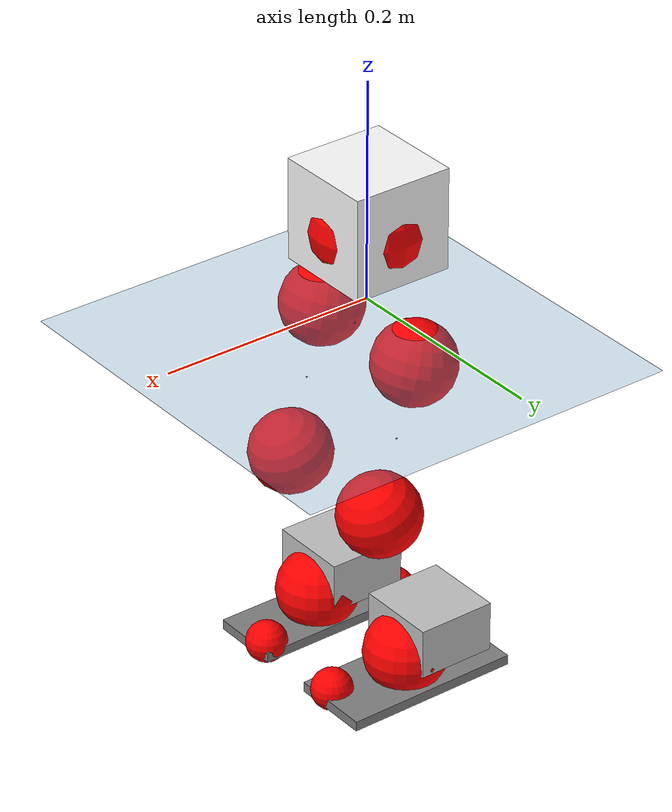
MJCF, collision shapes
<mujoco model="pi_12dof_release_v1">
  <compiler angle="radian" assetdir="assets" balanceinertia="true" inertiafromgeom="false"/>

  <option timestep="0.005" density="1.2" viscosity="2e-05"/>

  <size nkey="1"/>

  <visual>
    <quality shadowsize="8192"/>
    <map shadowclip="0.5"/>
  </visual>

  <default>
    <default class="/">
      <joint armature="0.01" damping="0.01" frictionloss="0.01"/>
      <geom contype="0" conaffinity="0" group="1" solref="-1000 -80"/>
      <site size="0.01 0.005 0.005" group="5"/>
      <general forcelimited="true" biastype="affine" gainprm="20" biasprm="0 -20 -0.5"/>
      <default class="foot">
        <geom size="0.0845 0.036 0.005" type="box" condim="6" group="4" priority="1" friction="0.9 0.2 0.2" solimp="0.015 1 0.005"/>
      </default>
      <default class="reward_collision_sphere">
        <geom group="5" rgba="1 0 0 1"/>
      </default>
    </default>
  </default>

  <asset>
    <texture type="skybox" colorspace="auto" name="//unnamed_texture_0" builtin="gradient" rgb1="0.95 0.95 0.95" rgb2="0.95 0.95 0.95" width="100" height="600"/>
    <texture type="2d" colorspace="auto" name="texplane" builtin="checker" rgb1="0.345 0.575 0.748" rgb2="0.345 0.575 0.748" markrgb="1 1 1" width="512" height="512"/>
    <material name="MatPlane" class="/" texture="texplane" texuniform="true" texrepeat="2 2" specular="0.9"/>
    <mesh name="baselink_1" class="/" file="baselink_1.STL"/>
    <mesh name="r_hip_pitch_link" class="/" file="r_hip_pitch_link.STL"/>
    <mesh name="r_hip_roll_link" class="/" file="r_hip_roll_link.STL"/>
    <mesh name="r_thigh_link" class="/" file="r_thigh_link.STL"/>
    <mesh name="r_calf_link" class="/" file="r_calf_link.STL"/>
    <mesh name="r_ankle_pitch_link" class="/" file="r_ankle_pitch_link.STL"/>
    <mesh name="r_ankle_roll_link" class="/" file="r_ankle_roll_link.STL"/>
    <mesh name="l_hip_pitch_link" class="/" file="l_hip_pitch_link.STL"/>
    <mesh name="l_hip_roll_link" class="/" file="l_hip_roll_link.STL"/>
    <mesh name="l_thigh_link" class="/" file="l_thigh_link.STL"/>
    <mesh name="l_calf_link" class="/" file="l_calf_link.STL"/>
    <mesh name="l_ankle_pitch_link" class="/" file="l_ankle_pitch_link.STL"/>
    <mesh name="l_ankle_roll_link" class="/" file="l_ankle_roll_link.STL"/>
  </asset>

  <worldbody>
    <geom name="floor" class="/" size="100 100 0.125" type="plane" group="0" material="MatPlane"/>
    <light name="toplight_shadow" class="/" pos="0 0 5" dir="0.0990148 0.0990148 -0.990148" type="directional" ambient="0.04 0.04 0.04" diffuse="0.55 0.55 0.55" specular="0.12 0.12 0.12"/>
    <light name="toplight_fill" class="/" pos="0 0 5" dir="0.0990148 0.0990148 -0.990148" type="directional" castshadow="false" ambient="0.04 0.04 0.04" diffuse="0.3 0.3 0.3" specular="0.08 0.08 0.08"/>
    <body name="trunk" pos="-0.000403999 0.000120752 0.000229609" quat="1 0.000199382 9.78981e-05 -3.19547e-05">
      <inertial pos="0.00245428 -0.000924064 0.0399511" quat="0.69352 0.0107483 0.00922694 0.720298" mass="1.70876" diaginertia="0.010641 0.00248296 0.00395107"/>
      <joint name="//unnamed_joint_0" type="free"/>
      <geom name="//unnamed_geom_1" class="/" type="mesh" density="0" rgba="1 1 1 1" mesh="baselink_1"/>
      <geom name="//unnamed_geom_2" class="/" size="0.0463974 0.0463974 0.0463974" pos="0 0 0.0791339" type="box" rgba="1 1 1 1"/>
      <geom name="//unnamed_geom_3" class="reward_collision_sphere" size="0.0510371" pos="0 0 0.0692422"/>
      <site name="imu" class="/" pos="0.00240033 0.000681573 -0.000433437" size="0.00927948"/>
      <camera name="track" class="/" pos="0 -1.5498 0" quat="0.707107 0.707107 0 0" mode="trackcom"/>
      <camera name="ego_camera" class="/" pos="0.0764827 0 0.178051" quat="-0.5 -0.5 0.5 0.5"/>
      <body name="r_hip_pitch_link" pos="-3.62935e-05 -0.0175275 -0.0317852" quat="0.992183 -8.62974e-05 -0.124789 1.18244e-05">
        <inertial pos="0.00124439 -0.0427943 9.17751e-05" quat="-0.01951 0.706226 -0.0280651 0.707161" mass="0.293806" diaginertia="0.000119022 2.76469e-05 7.8757e-05"/>
        <joint name="r_hip_pitch_joint" class="/" pos="0 0 0" axis="0.000585396 -0.999996 0.00283486" range="-1.74964 1.23295" armature="0.00929854" damping="0.0126502" frictionloss="0.00930811"/>
        <geom name="//unnamed_geom_4" class="/" type="mesh" density="0" rgba="0.75294 0.75294 0.75294 1" mesh="r_hip_pitch_link"/>
        <geom name="//unnamed_geom_5" class="/" size="0.000463974 0.000463974 0.000463974" type="box" rgba="0.75294 0.75294 0.75294 1"/>
        <body name="r_hip_roll_link" pos="0.00141838 -0.0430969 0.000115438" quat="1 -3.60274e-05 -6.31845e-05 -0.000229676">
          <inertial pos="-0.0013559 2.53738e-05 -0.06138" quat="0.706747 -0.0784884 -0.0828157 0.698205" mass="0.309081" diaginertia="0.000367955 7.73777e-05 0.000120828"/>
          <joint name="r_hip_roll_joint" class="/" pos="0 0 0" axis="-0.999995 0.0030015 0.00092165" stiffness="0.000223912" range="-0.12151 0.486188" armature="0.00934922" damping="0.0112411" frictionloss="0.00967891"/>
          <geom name="//unnamed_geom_6" class="/" type="mesh" density="0" rgba="0.75294 0.75294 0.75294 1" mesh="r_hip_roll_link"/>
          <geom name="//unnamed_geom_7" class="/" size="0.000463974 0.000463974 0.000463974" type="box" rgba="0.75294 0.75294 0.75294 1"/>
          <geom name="//unnamed_geom_8" class="reward_collision_sphere" size="0.0371179"/>
          <body name="r_thigh_link" pos="-0.000288251 0.000540014 -0.0684185" quat="1 0.000119003 -0.000145792 -0.000325167">
            <inertial pos="-1.0675e-05 0.000240889 -0.0471367" quat="0.737072 0.675814 -0.000516376 0.000213298" mass="0.0883753" diaginertia="0.000137936 2.61616e-05 5.47669e-05"/>
            <joint name="r_thigh_joint" class="/" pos="0 0 0" axis="0.000967147 -0.00290555 -0.999995" range="-0.318876 0.593929" armature="0.00922665" damping="0.0028729" frictionloss="0.00939066"/>
            <geom name="//unnamed_geom_9" class="/" type="mesh" density="0" rgba="0.75294 0.75294 0.75294 1" mesh="r_thigh_link"/>
            <geom name="//unnamed_geom_10" class="/" size="0.000463974 0.000463974 0.000463974" type="box" rgba="0.75294 0.75294 0.75294 1"/>
            <body name="r_calf_link" pos="-0.000447276 -0.000813278 -0.0692023" quat="0.947706 -7.00279e-05 0.319144 5.30302e-05">
              <inertial pos="-0.000386461 -0.000394859 -0.0690754" quat="0.999975 -0.00638177 0.00108368 0.00291359" mass="0.649371" diaginertia="0.00388857 0.000987951 0.000165331"/>
              <joint name="r_calf_joint" class="/" pos="0 0 0" axis="0.00445684 -0.999989 0.00108005" stiffness="4.80171e-05" range="-1.64487 0.648532" armature="0.0090827" damping="0.00620067" frictionloss="0.00925589"/>
              <geom name="//unnamed_geom_11" class="/" type="mesh" density="0" rgba="0.75294 0.75294 0.75294 1" mesh="r_calf_link"/>
              <geom name="//unnamed_geom_12" class="/" size="0.000463974 0.000463974 0.000463974" type="box" rgba="0.75294 0.75294 0.75294 1"/>
              <geom name="//unnamed_geom_13" class="reward_collision_sphere" size="0.0371179"/>
              <body name="r_ankle_pitch_link" pos="0.000470821 0.000438072 -0.139074" quat="0.980067 2.83313e-05 -0.198665 6.56209e-05">
                <inertial pos="0.00544337 0.00343942 0.000241818" quat="0.00220694 0.707154 -0.00228493 0.707053" mass="0.141216" diaginertia="0.000338958 6.22796e-05 0.000114066"/>
                <joint name="r_ankle_pitch_joint" class="/" pos="0 0 0" axis="0.00317186 -0.999994 0.00134645" range="-1.29768 0.50209" armature="0.0095299" damping="0.00793316" frictionloss="0.00968141"/>
                <geom name="//unnamed_geom_14" class="/" type="mesh" density="0" rgba="0.75294 0.75294 0.75294 1" mesh="r_ankle_pitch_link"/>
                <geom name="//unnamed_geom_15" class="/" size="0.03619 0.0371179 0.0231987" type="box" rgba="0.75294 0.75294 0.75294 1"/>
                <body name="r_ankle_roll_link" pos="0.0782992 0.00174695 -0.0005234" quat="1 -2.13234e-05 -0.000106608 -0.000117738">
                  <inertial pos="-0.0238477 0.000815611 -0.0150723" quat="0.559267 0.431032 0.434153 0.559413" mass="0.417923" diaginertia="0.0012415 0.00028624 0.000269114"/>
                  <joint name="r_ankle_roll_joint" class="/" pos="0 0 0" axis="-1 0.000243813 3.53927e-05" range="-0.1523 0.152011" armature="0.0094955" damping="0.00607864" frictionloss="0.00927941"/>
                  <geom name="//unnamed_geom_16" class="/" type="mesh" density="0" rgba="0.75294 0.75294 0.75294 1" mesh="r_ankle_roll_link"/>
                  <geom name="//unnamed_geom_17" class="/" type="mesh" rgba="0.75294 0.75294 0.75294 1" mesh="r_ankle_roll_link"/>
                  <geom name="right_foot" class="foot" size="0.078927 0.0324863 0.00449881" pos="-0.0520082 0 -0.0435236"/>
                  <geom name="//unnamed_geom_19" class="reward_collision_sphere" size="0.0371179" pos="-0.0509884 0 -0.0197835"/>
                  <geom name="//unnamed_geom_20" class="reward_collision_sphere" size="0.018559" pos="0.0152965 0.015498 -0.039567"/>
                  <geom name="//unnamed_geom_21" class="reward_collision_sphere" size="0.018559" pos="-0.122372 0.015498 -0.039567"/>
                  <site name="right_foot" class="foot" pos="-0.0520082 0 -0.0435236" size="0.00927948"/>
                </body>
              </body>
            </body>
          </body>
        </body>
      </body>
      <body name="l_hip_pitch_link" pos="0.000633642 0.0189281 -0.0322384" quat="0.992197 -2.44264e-05 -0.124682 -5.23802e-05">
        <inertial pos="0.000821973 0.0410556 -0.000118221" quat="-0.0385094 0.706459 0.0272121 0.706181" mass="0.313192" diaginertia="0.000140917 2.9424e-05 9.6226e-05"/>
        <joint name="l_hip_pitch_joint" class="/" pos="0 0 0" axis="-0.000800428 0.999994 0.00334651" range="-1.24321 1.75196" armature="0.0092869" damping="0.0136853" frictionloss="0.00911506"/>
        <geom name="//unnamed_geom_22" class="/" type="mesh" density="0" rgba="0.75294 0.75294 0.75294 1" mesh="l_hip_pitch_link"/>
        <geom name="//unnamed_geom_23" class="/" size="0.000463974 0.000463974 0.000463974" type="box" rgba="0.75294 0.75294 0.75294 1"/>
        <body name="l_hip_roll_link" pos="-0.000994471 0.0431254 0.000106982" quat="1 6.49724e-05 -8.17635e-06 1.62501e-06">
          <inertial pos="-0.00117442 8.1009e-05 -0.0603813" quat="0.69796 -0.0756795 -0.0817223 0.707422" mass="0.30844" diaginertia="0.000367412 7.65877e-05 0.000119794"/>
          <joint name="l_hip_roll_joint" class="/" pos="0 0 0" axis="-0.999996 -0.00260095 -0.000906501" range="-0.49771 0.115612" armature="0.00892436" damping="0.00913485" frictionloss="0.00959151"/>
          <geom name="//unnamed_geom_24" class="/" type="mesh" density="0" rgba="0.75294 0.75294 0.75294 1" mesh="l_hip_roll_link"/>
          <geom name="//unnamed_geom_25" class="/" size="0.000463974 0.000463974 0.000463974" type="box" rgba="0.75294 0.75294 0.75294 1"/>
          <geom name="//unnamed_geom_26" class="reward_collision_sphere" size="0.0371179"/>
          <body name="l_thigh_link" pos="0.000256606 -0.000826918 -0.0689289" quat="1 -8.22309e-05 6.87756e-06 -5.8749e-05">
            <inertial pos="0.000448932 -0.00153882 -0.0465923" quat="0.675606 0.737258 0.00267575 0.0010006" mass="0.0902104" diaginertia="0.000137221 2.64653e-05 5.48888e-05"/>
            <joint name="l_thigh_joint" class="/" pos="0 0 0" axis="0.00208699 -0.000237394 -0.999998" range="-0.600456 0.302039" armature="0.00917421" damping="0.00475652" frictionloss="0.0091393"/>
            <geom name="//unnamed_geom_27" class="/" type="mesh" density="0" rgba="0.75294 0.75294 0.75294 1" mesh="l_thigh_link"/>
            <geom name="//unnamed_geom_28" class="/" size="0.000463974 0.000463974 0.000463974" type="box" rgba="0.75294 0.75294 0.75294 1"/>
            <body name="l_calf_link" pos="-0.000270955 -0.000399173 -0.0696219" quat="0.947682 -6.5234e-05 0.319215 9.60823e-05">
              <inertial pos="-0.000599448 0.00193731 -0.0693167" quat="0.999984 0.00301324 -0.000140204 0.00479316" mass="0.649313" diaginertia="0.00384175 0.00096538 0.000163299"/>
              <joint name="l_calf_joint" class="/" pos="0 0 0" axis="-2.70272e-05 1 -0.00012697" range="-0.667305 1.6551" armature="0.00929852" damping="0.00557162" frictionloss="0.00958088"/>
              <geom name="//unnamed_geom_29" class="/" type="mesh" density="0" rgba="0.75294 0.75294 0.75294 1" mesh="l_calf_link"/>
              <geom name="//unnamed_geom_30" class="/" size="0.000463974 0.000463974 0.000463974" type="box" rgba="0.75294 0.75294 0.75294 1"/>
              <geom name="//unnamed_geom_31" class="reward_collision_sphere" size="0.0371179"/>
              <body name="l_ankle_pitch_link" pos="0.000673187 0.00101059 -0.138516" quat="0.980064 4.83339e-05 -0.198681 0.000128261">
                <inertial pos="0.00546183 -0.00050505 0.000412458" quat="-0.00126909 0.708251 0.00331313 0.705952" mass="0.139807" diaginertia="0.000339082 6.14636e-05 0.000114173"/>
                <joint name="l_ankle_pitch_joint" class="/" pos="0 0 0" axis="0.00033495 1 -0.000524409" stiffness="0.00109388" range="-0.520135 1.28547" armature="0.00903956" damping="0.00606866" frictionloss="0.00938969"/>
                <geom name="//unnamed_geom_32" class="/" type="mesh" density="0" rgba="0.75294 0.75294 0.75294 1" mesh="l_ankle_pitch_link"/>
                <geom name="//unnamed_geom_33" class="/" size="0.03619 0.0371179 0.0231987" type="box" rgba="0.75294 0.75294 0.75294 1"/>
                <body name="l_ankle_roll_link" pos="0.0766864 0.000333607 0.00029334" quat="1 4.93209e-05 0.000112189 -9.63284e-05">
                  <inertial pos="-0.0247447 -0.000980676 -0.0144052" quat="0.560048 0.430961 0.433565 0.559142" mass="0.412757" diaginertia="0.00126611 0.000287251 0.00026965"/>
                  <joint name="l_ankle_roll_joint" class="/" pos="0 0 0" axis="-0.999997 0.000388425 -0.00251082" range="-0.14456 0.167998" armature="0.00923702" damping="0.0071386" frictionloss="0.00906155"/>
                  <geom name="//unnamed_geom_34" class="/" type="mesh" density="0" rgba="0.75294 0.75294 0.75294 1" mesh="l_ankle_roll_link"/>
                  <geom name="//unnamed_geom_35" class="/" type="mesh" rgba="0.75294 0.75294 0.75294 1" mesh="l_ankle_roll_link"/>
                  <geom name="left_foot" class="foot" size="0.0812116 0.0365502 0.00457484" pos="-0.0520082 0 -0.0435236"/>
                  <geom name="//unnamed_geom_37" class="reward_collision_sphere" size="0.0371179" pos="-0.0509884 0 -0.0197835"/>
                  <geom name="//unnamed_geom_38" class="reward_collision_sphere" size="0.018559" pos="0.0152965 -0.015498 -0.039567"/>
                  <geom name="//unnamed_geom_39" class="reward_collision_sphere" size="0.018559" pos="-0.122372 -0.015498 -0.039567"/>
                  <site name="left_foot" class="foot" pos="-0.0520082 0 -0.0435236" size="0.00927948"/>
                </body>
              </body>
            </body>
          </body>
        </body>
      </body>
    </body>
  </worldbody>

  <contact>
    <pair class="/" geom1="floor" geom2="right_foot" name="//unnamed_contact_1"/>
    <pair class="/" geom1="floor" geom2="left_foot" name="//unnamed_contact_0"/>
  </contact>

  <actuator>
    <general name="r_hip_pitch_joint" class="/" joint="r_hip_pitch_joint" forcerange="-19.3864 19.3864" gainprm="18.4846" biasprm="0 -18.4846 -0.467396"/>
    <general name="r_hip_roll_joint" class="/" joint="r_hip_roll_joint" forcerange="-19.3087 19.3087" gainprm="18.4846" biasprm="0 -18.4846 -0.467396"/>
    <general name="r_thigh_joint" class="/" joint="r_thigh_joint" forcerange="-19.3959 19.3959" gainprm="18.4846" biasprm="0 -18.4846 -0.467396"/>
    <general name="r_calf_joint" class="/" joint="r_calf_joint" forcerange="-19.5765 19.5765" gainprm="18.4846" biasprm="0 -18.4846 -0.467396"/>
    <general name="r_ankle_pitch_joint" class="/" joint="r_ankle_pitch_joint" forcerange="-19.1201 19.1201" gainprm="18.4846" biasprm="0 -18.4846 -0.467396"/>
    <general name="r_ankle_roll_joint" class="/" joint="r_ankle_roll_joint" forcerange="-19.8129 19.8129" gainprm="18.4846" biasprm="0 -18.4846 -0.467396"/>
    <general name="l_hip_pitch_joint" class="/" joint="l_hip_pitch_joint" forcerange="-19.5151 19.5151" gainprm="18.4846" biasprm="0 -18.4846 -0.467396"/>
    <general name="l_hip_roll_joint" class="/" joint="l_hip_roll_joint" forcerange="-19.9732 19.9732" gainprm="18.4846" biasprm="0 -18.4846 -0.467396"/>
    <general name="l_thigh_joint" class="/" joint="l_thigh_joint" forcerange="-19.4303 19.4303" gainprm="18.4846" biasprm="0 -18.4846 -0.467396"/>
    <general name="l_calf_joint" class="/" joint="l_calf_joint" forcerange="-19.4732 19.4732" gainprm="18.4846" biasprm="0 -18.4846 -0.467396"/>
    <general name="l_ankle_pitch_joint" class="/" joint="l_ankle_pitch_joint" forcerange="-19.2968 19.2968" gainprm="18.4846" biasprm="0 -18.4846 -0.467396"/>
    <general name="l_ankle_roll_joint" class="/" joint="l_ankle_roll_joint" forcerange="-18.9536 18.9536" gainprm="18.4846" biasprm="0 -18.4846 -0.467396"/>
  </actuator>

  <sensor>
    <gyro site="imu" name="imu_angular_velocity"/>
    <velocimeter site="imu" name="imu_linear_velocity"/>
    <framelinvel objtype="site" objname="left_foot" name="left_foot_global_linear_velocity"/>
    <framelinvel objtype="site" objname="right_foot" name="right_foot_global_linear_velocity"/>
  </sensor>

  <keyframe>
    <key name="home" qpos="0 0 0.291 1 0 0 0 0.4 0 0 -0.8 0.4 0 -0.4 0 0 0.8 -0.4 0"/>
  </keyframe>
</mujoco>
